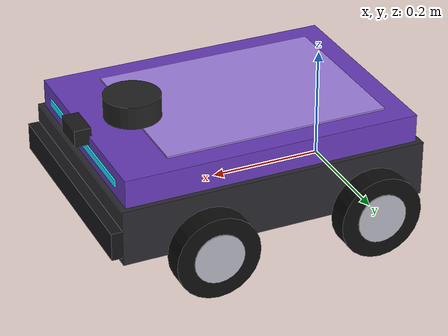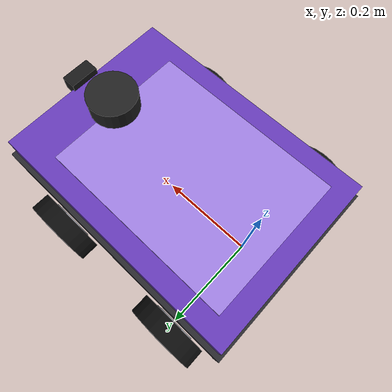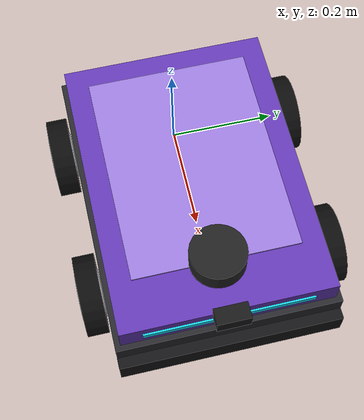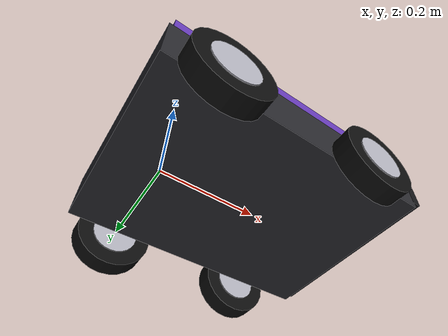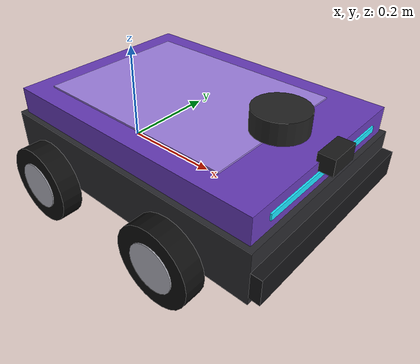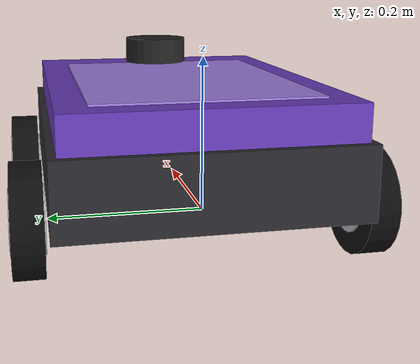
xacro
<?xml version="1.0"?>
<robot name="mecanum_robot" xmlns:xacro="http://www.ros.org/wiki/xacro">

    <xacro:include filename="robot_core_mecanum.xacro" />

    <xacro:include filename="gazebo_control_mecanum.xacro" />

    <xacro:include filename="lidar.xacro" />

    <xacro:include filename="camera.xacro" />

</robot>

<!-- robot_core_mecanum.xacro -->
<robot name="mecanum_robot" xmlns:xacro="http://www.ros.org/wiki/xacro" xmlns:gazebo="http://gazebo.apache.org/xmlns/gazebo">

  <xacro:include filename="inertial_macros.xacro" />

  <!-- Base Link -->
  <link name="base_link"/>
  <link name="base_footprint">
    <collision>
      <geometry>
        <box size="0.55 0.4 0.01"/>
      </geometry>
    </collision>
  </link>

  <joint name="base_footprint_joint" type="fixed">
    <parent link="base_link"/>
    <child link="base_footprint"/>
    <origin xyz="0 0 -0.05"/>
  </joint>

  <!-- Chassis -->
  <joint name="chassis_joint" type="fixed">
    <parent link="base_link"/>
    <child link="chassis"/>
    <origin xyz="-0.1 0 0"/>
  </joint>

  <link name="chassis">
    <visual>
      <origin xyz="0.275 0 0.05"/>
      <geometry><box size="0.55 0.4 0.10"/></geometry>
      <material name="skirt_material"><color rgba="0.16 0.16 0.18 1.0"/></material>
    </visual>
    <visual>
      <origin xyz="0.275 0 0.125"/>
      <geometry><box size="0.53 0.38 0.05"/></geometry>
      <material name="chassis_material"><color rgba="0.40 0.23 0.72 1.0"/></material>
    </visual>
    <visual>
      <origin xyz="0.25 0 0.151"/>
      <geometry><box size="0.40 0.30 0.004"/></geometry>
      <material name="accent_material"><color rgba="0.62 0.50 0.88 1.0"/></material>
    </visual>
    <visual>
      <origin xyz="0.56 0 0.04"/>
      <geometry><box size="0.02 0.4 0.05"/></geometry>
      <material name="bumper_material"><color rgba="0.08 0.08 0.09 1.0"/></material>
    </visual>
    <visual>
      <origin xyz="0.541 0 0.125"/>
      <geometry><box size="0.004 0.30 0.012"/></geometry>
      <material name="led_material"><color rgba="0.1 0.9 1.0 1.0"/></material>
    </visual>
    <collision>
      <origin xyz="0.275 0 0.075"/>
      <geometry>
        <box size="0.55 0.34 0.15"/>
      </geometry>
    </collision>
      <xacro:inertial_box mass="0.5" x="0.55" y="0.4" z="0.15">
            <origin xyz="0.275 0 0.075" rpy="0 0 0"/>
         </xacro:inertial_box>
  </link>

  <!-- Rear Wheels (driven) -->
  <joint name="left_wheel_joint" type="continuous">
    <parent link="base_link"/>
    <child link="left_wheel"/>
    <origin xyz="0 0.225 0" rpy="-1.57 0 0"/>
    <axis xyz="0 0 1"/>
  </joint>

  <link name="left_wheel">
    <visual>
      <geometry>
        <cylinder radius="0.075" length="0.04"/>
      </geometry>
      <material name="wheel_material">
        <color rgba="0.05 0.05 0.05 1.0"/>
      </material>
    </visual>
    <visual>
      <geometry><cylinder radius="0.045" length="0.044"/></geometry>
      <material name="hub_material"><color rgba="0.70 0.70 0.74 1.0"/></material>
    </visual>
    <collision>
      <geometry>
        <cylinder radius="0.075" length="0.04"/>
      </geometry>
    </collision>
        <xacro:inertial_cylinder mass="0.1" length="0.04" radius="0.075">
            <origin xyz="0 0 0" rpy="0 0 0"/>
         </xacro:inertial_cylinder>
  </link>

  <joint name="right_wheel_joint" type="continuous">
    <parent link="base_link"/>
    <child link="right_wheel"/>
    <origin xyz="0 -0.225 0" rpy="1.57 0 0"/>
    <axis xyz="0 0 -1"/>
  </joint>

  <link name="right_wheel">
    <visual>
      <geometry>
        <cylinder radius="0.075" length="0.04"/>
      </geometry>
      <material name="wheel_material">
        <color rgba="0.05 0.05 0.05 1.0"/>
      </material>
    </visual>
    <visual>
      <geometry><cylinder radius="0.045" length="0.044"/></geometry>
      <material name="hub_material"><color rgba="0.70 0.70 0.74 1.0"/></material>
    </visual>
    <collision>
      <geometry>
        <cylinder radius="0.075" length="0.04"/>
      </geometry>
    </collision>
        <xacro:inertial_cylinder mass="0.1" length="0.04" radius="0.075">
            <origin xyz="0 0 0" rpy="0 0 0"/>
         </xacro:inertial_cylinder>
  </link>

  <!-- Front Wheels (driven — fixed casters in the diff-drive core become active wheels here) -->
  <joint name="left_front_wheel_joint" type="continuous">
    <parent link="base_link"/>
    <child link="left_front_wheel"/>
    <origin xyz="0.3 0.225 0" rpy="-1.57 0 0"/>
    <axis xyz="0 0 1"/>
  </joint>

  <link name="left_front_wheel">
    <visual>
      <geometry>
        <cylinder radius="0.075" length="0.04"/>
      </geometry>
      <material name="wheel_material">
        <color rgba="0.05 0.05 0.05 1.0"/>
      </material>
    </visual>
    <visual>
      <geometry><cylinder radius="0.045" length="0.044"/></geometry>
      <material name="hub_material"><color rgba="0.70 0.70 0.74 1.0"/></material>
    </visual>
    <collision>
      <geometry>
        <cylinder radius="0.075" length="0.04"/>
      </geometry>
    </collision>
        <xacro:inertial_cylinder mass="0.1" length="0.04" radius="0.075">
            <origin xyz="0 0 0" rpy="0 0 0"/>
         </xacro:inertial_cylinder>
  </link>

  <joint name="right_front_wheel_joint" type="continuous">
    <parent link="base_link"/>
    <child link="right_front_wheel"/>
    <origin xyz="0.3 -0.225 0" rpy="1.57 0 0"/>
    <axis xyz="0 0 -1"/>
  </joint>

  <link name="right_front_wheel">
    <visual>
      <geometry>
        <cylinder radius="0.075" length="0.04"/>
      </geometry>
      <material name="wheel_material">
        <color rgba="0.05 0.05 0.05 1.0"/>
      </material>
    </visual>
    <visual>
      <geometry><cylinder radius="0.045" length="0.044"/></geometry>
      <material name="hub_material"><color rgba="0.70 0.70 0.74 1.0"/></material>
    </visual>
    <collision>
      <geometry>
        <cylinder radius="0.075" length="0.04"/>
      </geometry>
    </collision>
        <xacro:inertial_cylinder mass="0.1" length="0.04" radius="0.075">
            <origin xyz="0 0 0" rpy="0 0 0"/>
         </xacro:inertial_cylinder>
  </link>

  <!-- Gazebo Parameters -->
  <gazebo reference="chassis">
    <mu1>1.0</mu1>
    <mu2>1.0</mu2>
  </gazebo>

  <gazebo reference="left_wheel">
    <mu1>0.3</mu1>
    <mu2>0.3</mu2>
  </gazebo>

  <gazebo reference="right_wheel">
    <mu1>0.3</mu1>
    <mu2>0.3</mu2>
  </gazebo>

  <gazebo reference="left_front_wheel">
    <mu1>0.3</mu1>
    <mu2>0.3</mu2>
  </gazebo>

  <gazebo reference="right_front_wheel">
    <mu1>0.3</mu1>
    <mu2>0.3</mu2>
  </gazebo>

</robot>

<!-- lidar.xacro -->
<robot xmlns:xacro="http://www.ros.org/wiki/xacro" >
   <xacro:arg name="namespace" default=""/>
   <xacro:property name="ns" value="$(arg namespace)"/>
   <joint name="laser_joint" type="fixed">
     <parent link="chassis"/>
     <child link="laser_frame"/>
     <origin xyz="0.45 0 0.175" rpy="0 0 0"/>
   </joint>
   <link name="laser_frame">
      <visual>
         <origin xyz="0 0 0"/>
         <geometry>
            <cylinder length="0.04" radius="0.05"/>
         </geometry>
         <material name="laser_material">
            <color rgba="0.13 0.13 0.13 1.0"/>
         </material>
      </visual>
      <collision>
         <origin xyz="0 0 0"/>
         <geometry>
            <cylinder length="0.04" radius="0.05"/>
         </geometry>
      </collision>
      <xacro:inertial_cylinder mass="0.1" length="0.04" radius="0.05">
         <origin xyz="0 0 0" rpy="0 0 0"/>
      </xacro:inertial_cylinder>
   </link>

   <!-- 2D Lidar New Gazebo Sensor Plugin  -->
   <gazebo reference="laser_frame">
      <sensor name="laser" type="gpu_lidar">
         <pose> 0 0 0 0 0 0 </pose>
         <always_on>true</always_on>
         <visualize>true</visualize>
         <update_rate>10</update_rate>
         <topic>${ns + '/scan' if ns else 'scan'}</topic>
         <gz_frame_id>${ns + '/laser_frame' if ns else 'laser_frame'}</gz_frame_id>
         <lidar>
            <scan>
               <horizontal>
               <samples>360</samples>
               <min_angle>-3.14</min_angle>
               <max_angle>3.14</max_angle>
               </horizontal>
            </scan>
            <range>
               <min>0.3</min>
               <max>12</max>
            </range>
         </lidar>
      </sensor>
   </gazebo>
</robot>

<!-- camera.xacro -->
<robot xmlns:xacro="http://www.ros.org/wiki/xacro">
  <xacro:arg name="namespace" default=""/>
  <xacro:property name="ns" value="$(arg namespace)"/>

  <!-- RGB camera: front-top of chassis, 60° FOV, 640x480 @ 30 Hz -->
  <joint name="camera_joint" type="fixed">
    <parent link="base_link"/>
    <child link="camera_link"/>
    <origin xyz="0.45 0.0 0.15" rpy="0 0 0"/>
  </joint>

  <link name="camera_link">
    <visual>
      <geometry><box size="0.03 0.06 0.03"/></geometry>
      <material name="camera_material">
        <color rgba="0.1 0.1 0.1 1.0"/>
      </material>
    </visual>
    <collision>
      <geometry><box size="0.03 0.06 0.03"/></geometry>
    </collision>
    <xacro:inertial_box mass="0.01" x="0.03" y="0.06" z="0.03">
      <origin xyz="0 0 0" rpy="0 0 0"/>
    </xacro:inertial_box>
  </link>

  <!-- Optical frame: Z forward, X right, Y down (ROS convention) -->
  <joint name="camera_optical_joint" type="fixed">
    <parent link="camera_link"/>
    <child link="camera_optical_frame"/>
    <origin xyz="0 0 0" rpy="-1.5708 0 -1.5708"/>
  </joint>
  <link name="camera_optical_frame"/>

  <gazebo reference="camera_link">
    <sensor name="camera" type="camera">
      <always_on>true</always_on>
      <update_rate>30</update_rate>
      <topic>${ns + '/camera/image_raw' if ns else 'camera/image_raw'}</topic>
      <gz_frame_id>${ns + '/camera_optical_frame' if ns else 'camera_optical_frame'}</gz_frame_id>
      <camera>
        <horizontal_fov>1.047</horizontal_fov>
        <image>
          <width>640</width>
          <height>480</height>
          <format>R8G8B8</format>
        </image>
        <clip>
          <near>0.05</near>
          <far>8.0</far>
        </clip>
        <noise>
          <type>gaussian</type>
          <mean>0.0</mean>
          <stddev>0.007</stddev>
        </noise>
      </camera>
    </sensor>
  </gazebo>

</robot>
